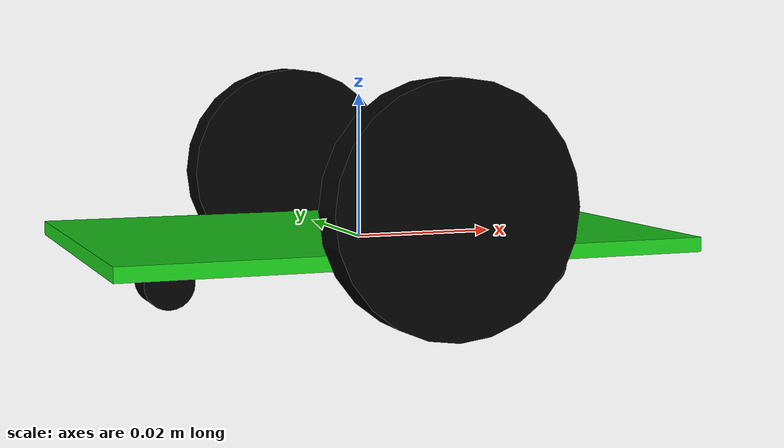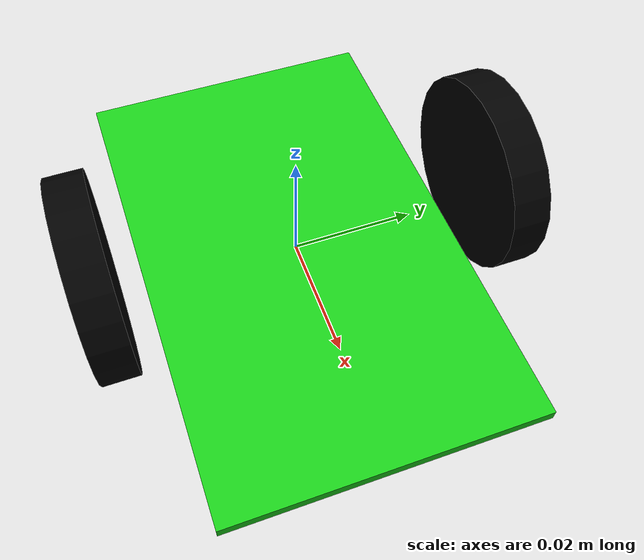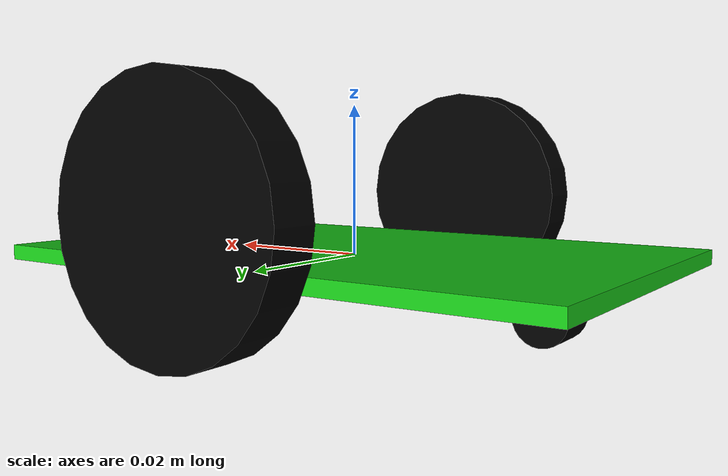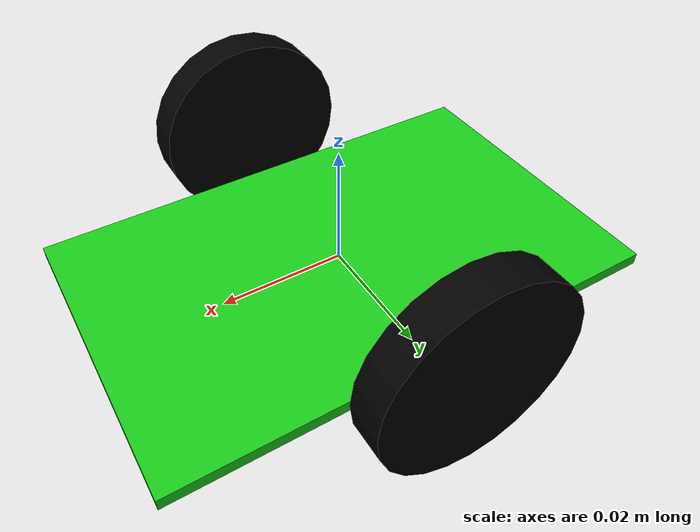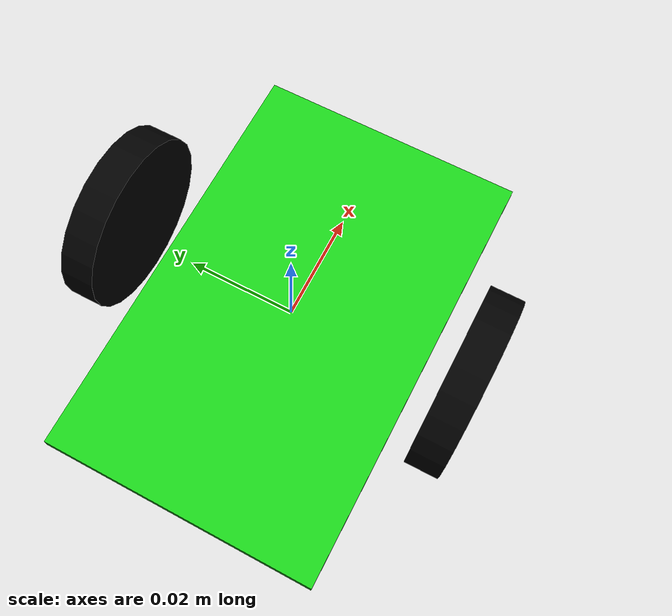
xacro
<?xml version="1.0" ?>

<robot name="basic_amr" xmlns:xacro="http://ros.org/wiki/xacro">

  <!-- Begin - Include -->

  <xacro:include filename="$(find basic_amr_urdf)/urdf/basic_amr_gazebo.xacro" />

  <!-- End - Include -->

  <material name="white">
    <color rgba="1 1 1 1"/>
  </material>

  <material name="black">
    <color rgba="0 0 0 1"/>
  </material>

  <material name="green">
    <color rgba="0.1 0.8 0.1 1"/>
  </material>

  <!-- Begin - Robot description -->

  <link name="base_footprint" />

  <joint name="base_footprint__base_link" type="fixed">
    <parent link="base_footprint"/>
    <child link="base_link"/>
  </joint>

  <link name="base_link">
    <origin rpy="0 0 0" xyz="0.00 0 0.00"/>
    <visual>
      <geometry>
        <box size="0.08 0.05 0.002"/>
      </geometry>
      <material name="green"/>
    </visual>
    <collision>
      <geometry>
        <box size="0.08 0.05 0.002"/>
      </geometry>
    </collision>
    <inertial>
      <mass value="0.5" />
      <inertia ixx="1.0" ixy="0.0" ixz="0.0" iyy="1.0" iyz="0.0" izz="1.0" />
    </inertial>
  </link>

  <link name="fcastor_wheel">
    <origin rpy="0 0 0" xyz="0.00 0 0.00"/>
    <visual>
      <geometry>
        <cylinder length="0.006" radius="0.0035"/>
      </geometry>
      <material name="black"/>
    </visual>
    <collision>
      <geometry>
        <cylinder length="0.006" radius="0.0035"/>
      </geometry>
    </collision>
    <inertial>
      <mass value="0.05" />
      <inertia ixx="0.001" ixy="0.0" ixz="0.0" iyy="0.001" iyz="0.0" izz="0.001" />
    </inertial>
  </link>

  <joint name="base_link__fcastor_wheel" type="continuous">
    <parent link="base_link"/>
    <child link="fcastor_wheel"/>
    <origin xyz="0.028 0 -0.005" rpy="1.5708 0 0"/>
    <axis xyz="0 0 1"/>
  </joint>

  <link name="bcastor_wheel">
    <origin rpy="0 0 0" xyz="0.00 0 0.00"/>
    <visual>
      <geometry>
        <cylinder length="0.006" radius="0.0035"/>
      </geometry>
      <material name="black"/>
    </visual>
    <collision>
      <geometry>
        <cylinder length="0.006" radius="0.0035"/>
      </geometry>
    </collision>
    <inertial>
      <mass value="0.05" />
      <inertia ixx="0.001" ixy="0.0" ixz="0.0" iyy="0.001" iyz="0.0" izz="0.001" />
    </inertial>
  </link>

  <joint name="base_link__bcastor_wheel" type="continuous">
    <parent link="base_link"/>
    <child link="bcastor_wheel"/>
    <origin xyz="-0.028 0 -0.005" rpy="1.5708 0 0"/>
    <axis xyz="0 0 1"/>
  </joint>

  <link name="left_wheel">
    <origin rpy="0 0 0" xyz="0.00 0 0.00"/>
    <visual>
      <geometry>
        <cylinder length="0.006" radius="0.016"/>
      </geometry>
      <material name="black"/>
    </visual>
    <collision>
      <geometry>
        <cylinder length="0.006" radius="0.016"/>
      </geometry>
    </collision>
    <inertial>
      <mass value="0.05" />
      <inertia ixx="0.001" ixy="0.0" ixz="0.0" iyy="0.001" iyz="0.0" izz="0.001" />
    </inertial>
  </link>

  <joint name="wheel_left_joint" type="continuous">
    <parent link="base_link"/>
    <child link="left_wheel"/>
    <origin xyz="0 0.032 0.007" rpy="1.5708 0 0"/>
    <axis xyz="0 0 -1"/>
  </joint>

  <link name="right_wheel">
    <origin rpy="0 0 0" xyz="0.00 0 0.00"/>
    <visual>
      <geometry>
        <cylinder length="0.006" radius="0.016"/>
      </geometry>
      <material name="black"/>
    </visual>
    <collision>
      <geometry>
        <cylinder length="0.006" radius="0.016"/>
      </geometry>
    </collision>
    <inertial>
      <mass value="0.05" />
      <inertia ixx="0.001" ixy="0.0" ixz="0.0" iyy="0.001" iyz="0.0" izz="0.001" />
    </inertial>
  </link>

  <joint name="wheel_right_joint" type="continuous">
    <parent link="base_link"/>
    <child link="right_wheel"/>
    <origin xyz="0 -0.032 0.007" rpy="1.5708 0 0"/>
    <axis xyz="0 0 -1"/>
  </joint>

  <!-- End - Robot description -->

</robot>
